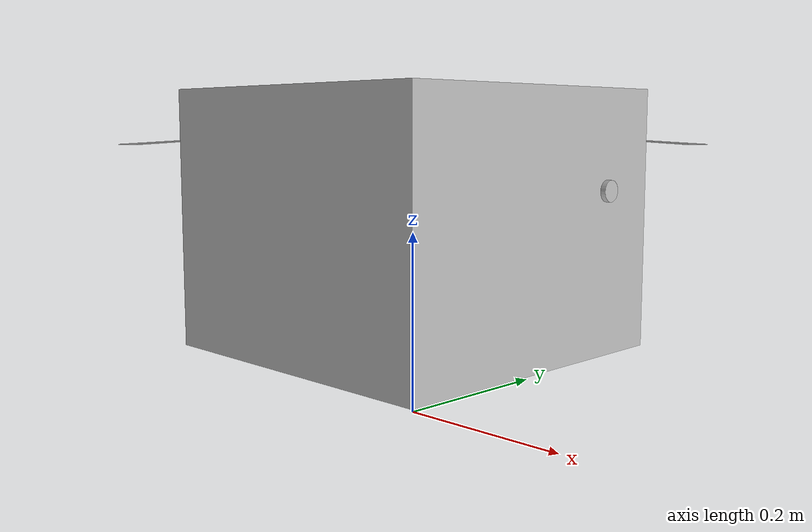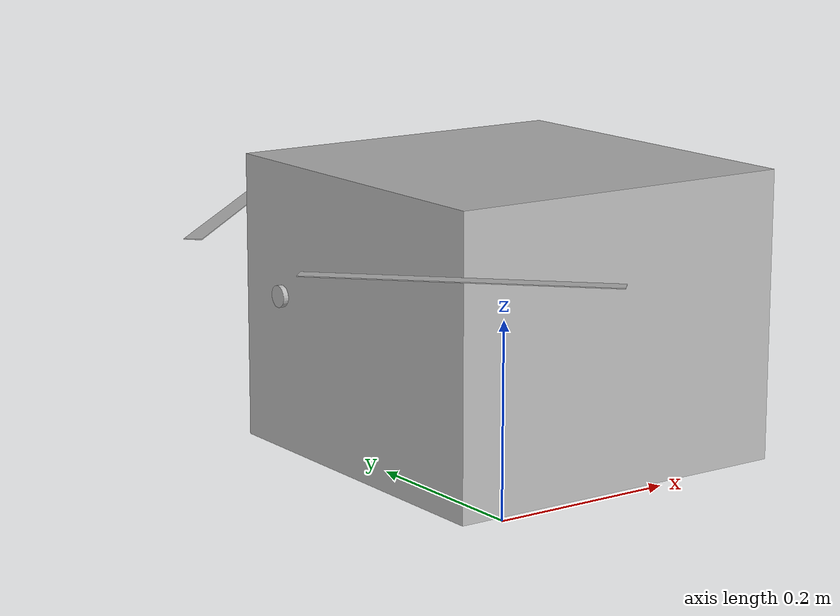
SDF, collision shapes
<?xml version="1.0" encoding="UTF-8"?>
<sdf version='1.9'>
  <model name='holybro_x500_dual'>
    <pose>0 0 0 0 0 0</pose>
    <self_collide>false</self_collide>
    <static>false</static>
    <link name="base_link">
     <inertial>
        <pose>0 0 0 0 0 0</pose>
        <mass>2.0</mass>
        <inertia>
          <ixx>0.02166666666666667</ixx>
          <ixy>0</ixy>
          <ixz>0</ixz>
          <iyy>0.02166666666666667</iyy>
          <iyz>0</iyz>
          <izz>0.04000000000000001</izz>
        </inertia>
      </inertial>
      <gravity>true</gravity>
      <velocity_decay/>
      <visual name="base_link_visual">
        <pose>0 0 0.25 0 0 0</pose>
        <geometry>
          <mesh>
            <scale>1 1 1</scale>
            <uri>model://holybro_x500_dual/meshes/uav_model_motors.dae</uri>
          </mesh>
        </geometry>
      </visual>
      <!-- Collision definition -->
      <collision name="base_link_collision_0">
        <pose> 0 0 .215 0 0 0</pose>
        <geometry>
          <box>
            <size>0.35355339059327373 0.35355339059327373 0.278 </size>
          </box>
        </geometry>
        <surface>
          <contact>
            <ode>
              <min_depth>0.001</min_depth>
              <max_vel>0</max_vel>
            </ode>
          </contact>
          <friction>
            <ode/>
          </friction>
        </surface>
      </collision>
        <!-- Collision definition -->
      <sensor name="air_pressure_sensor" type="air_pressure">
        <always_on>1</always_on>
        <update_rate>50</update_rate>
        <air_pressure>
          <pressure>
            <noise type="gaussian">
              <mean>0</mean>
              <stddev>0.01</stddev>
            </noise>
          </pressure>
        </air_pressure>
      </sensor>
      <sensor name="imu_sensor" type="imu">
        <always_on>1</always_on>
        <update_rate>250</update_rate>
      </sensor>
    </link>
    <link name="rotor_0">
      <gravity>true</gravity>
      <self_collide>false</self_collide>
      <velocity_decay/>
      <pose>0 0 0.25 0 0 0</pose>
      <inertial>
          <mass>0.016076923076923075</mass>
          <inertia>
            <ixx>3.8464910483993325e-07</ixx>
            <iyy>2.6115851691700804e-05</iyy>
            <izz>2.649858234714004e-05</izz>
          </inertia>
        </inertial>
      <visual name="rotor_0_visual">
        <pose>0 0 0 0 0 0</pose>
        <geometry>
          <mesh>
            <scale>1 1 1</scale>
            <uri>model://holybro_x500_dual/meshes/holybro_propeller_ccw.dae</uri>
          </mesh>
        </geometry>
      </visual>
      <collision name="rotor_0_collision">
        <pose>0 0 0.041 0 0 0.785398 </pose>
        <geometry>
          <box>
            <size>0.2792307692307692 0.016923076923076923 0.0008461538461538462</size>
          </box>
        </geometry>
        <surface>
          <contact>
            <ode>
              <min_depth>0.001</min_depth>
              <max_vel>0</max_vel>
            </ode>
          </contact>
          <friction>
            <ode/>
          </friction>
        </surface>
      </collision>
    </link>
    <joint name="rotor_0_joint" type="revolute">
      <parent>base_link</parent>
      <child>rotor_0</child>
      <axis>
        <xyz>0 0 1</xyz>
        <limit>
          <lower>-1e+16</lower>
          <upper>1e+16</upper>
        </limit>
        <dynamics>
          <spring_reference>0</spring_reference>
          <spring_stiffness>0</spring_stiffness>
        </dynamics>
      </axis>
    </joint>
    <link name="rotor_1">
      <gravity>true</gravity>
      <self_collide>false</self_collide>
      <velocity_decay/>
      <pose>-0.188 0.188 0.257 0 0 0</pose>
      <inertial>
          <mass>0.016076923076923075</mass>
          <inertia>
            <ixx>3.8464910483993325e-07</ixx>
            <iyy>2.6115851691700804e-05</iyy>
            <izz>2.649858234714004e-05</izz>
          </inertia>
        </inertial>
      <visual name="rotor_1_visual">
        <pose>0 0 0.031 0 0 0</pose>
        <geometry>
          <mesh>
            <scale>1 1 1</scale>
            <uri>model://holybro_x500_dual/meshes/holybro_propeller_ccw.dae</uri>
          </mesh>
        </geometry>
      </visual>
      <collision name="rotor_1_collision">
        <pose>0 0 0.041 0 0 0.785398</pose>
        <geometry>
          <box>
            <size>0.2792307692307692 0.016923076923076923 0.0008461538461538462</size>
          </box>
        </geometry>
        <surface>
          <contact>
            <ode>
              <min_depth>0.001</min_depth>
              <max_vel>0</max_vel>
            </ode>
          </contact>
          <friction>
            <ode/>
          </friction>
        </surface>
      </collision>
    </link>
    <joint name="rotor_1_joint" type="revolute">
      <parent>base_link</parent>
      <child>rotor_1</child>
      <axis>
        <xyz>0 0 1</xyz>
        <limit>
          <lower>-1e+16</lower>
          <upper>1e+16</upper>
        </limit>
        <dynamics>
          <spring_reference>0</spring_reference>
          <spring_stiffness>0</spring_stiffness>
        </dynamics>
      </axis>
    </joint>
    <link name="rotor_2">
      <gravity>true</gravity>
      <self_collide>false</self_collide>
      <velocity_decay/>
      <pose>0.188 0.188 0.257 0 0 0</pose>
      <inertial>
          <mass>0.016076923076923075</mass>
          <inertia>
            <ixx>3.8464910483993325e-07</ixx>
            <iyy>2.6115851691700804e-05</iyy>
            <izz>2.649858234714004e-05</izz>
          </inertia>
        </inertial>
      <visual name="rotor_2_visual">
        <pose>0 0 0.031 0 0 0</pose>
        <geometry>
          <mesh>
            <scale>1 1 1</scale>
            <uri>model://holybro_x500_dual/meshes/holybro_propeller_cw.dae</uri>
          </mesh>
        </geometry>
      </visual>
      <collision name="rotor_2_collision">
        <pose>0 0 0.041 0 0 -0.785398</pose>
        <geometry>
          <box>
            <size>0.2792307692307692 0.016923076923076923 0.0008461538461538462</size>
          </box>
        </geometry>
        <surface>
          <contact>
            <ode>
              <min_depth>0.001</min_depth>
              <max_vel>0</max_vel>
            </ode>
          </contact>
          <friction>
            <ode/>
          </friction>
        </surface>
      </collision>
    </link>
    <joint name="rotor_2_joint" type="revolute">
      <parent>base_link</parent>
      <child>rotor_2</child>
      <axis>
        <xyz>0 0 1</xyz>
        <limit>
          <lower>-1e+16</lower>
          <upper>1e+16</upper>
        </limit>
        <dynamics>
          <spring_reference>0</spring_reference>
          <spring_stiffness>0</spring_stiffness>
        </dynamics>
      </axis>
    </joint>
    <link name="rotor_3">
      <gravity>true</gravity>
      <self_collide>false</self_collide>
      <velocity_decay/>
      <pose>-0.188 -0.188 0.257 0 0 0</pose>
      <inertial>
          <mass>0.016076923076923075</mass>
          <inertia>
            <ixx>3.8464910483993325e-07</ixx>
            <iyy>2.6115851691700804e-05</iyy>
            <izz>2.649858234714004e-05</izz>
          </inertia>
        </inertial>
      <visual name="rotor_3_visual">
        <pose>0 0 0.031 0 0 0</pose>
        <geometry>
          <mesh>
            <scale>1 1 1</scale>
            <uri>model://holybro_x500_dual/meshes/holybro_propeller_cw.dae</uri>
          </mesh>
        </geometry>
      </visual>
      <collision name="rotor_3_collision">
        <pose>0 0 0.041 0 0 -0.785398</pose>
        <geometry>
          <box>
            <size>0.2792307692307692 0.016923076923076923 0.0008461538461538462</size>
          </box>
        </geometry>
        <surface>
          <contact>
            <ode>
              <min_depth>0.001</min_depth>
              <max_vel>0</max_vel>
            </ode>
          </contact>
          <friction>
            <ode/>
          </friction>
        </surface>
      </collision>
    </link>
    <joint name="rotor_3_joint" type="revolute">
      <parent>base_link</parent>
      <child>rotor_3</child>
      <axis>
        <xyz>0 0 1</xyz>
        <limit>
          <lower>-1e+16</lower>
          <upper>1e+16</upper>
        </limit>
        <dynamics>
          <spring_reference>0</spring_reference>
          <spring_stiffness>0</spring_stiffness>
        </dynamics>
      </axis>
    </joint>
<!-- Additional Rotors 4,5-->
<link name='rotor_4'>
      <pose>-0.25 0.00 0.257  1.57 0 1.57</pose>
      <inertial>
        <pose>0 0 0 0 0 0</pose>
        <mass>0.005</mass>
        <inertia>
          <ixx>9.75e-07</ixx>
          <ixy>0</ixy>
          <ixz>0</ixz>
          <iyy>0.000273104</iyy>
          <iyz>0</iyz>
          <izz>0.000274004</izz>
        </inertia>
      </inertial>
      <collision name='rotor_4_collision'>
        <pose>0 0 0 0 0 0</pose>
        <geometry>
          <cylinder>
            <length>0.005</length>
            <radius>0.01</radius>
          </cylinder>
        </geometry>
        <surface>
          <contact>
            <ode/>
          </contact>
          <friction>
            <ode/>
          </friction>
        </surface>
      </collision>
      <visual name='rotor_4_visual'>
        <pose>0 0 0 0 0 0</pose>
        <geometry>
          <mesh>
            <scale>0.5 0.5 0.5</scale>
            <uri>model://holybro_x500_dual/meshes/holybro_propeller_cw.dae</uri>
          </mesh>
        </geometry>
      </visual>
    </link>
<joint name='rotor_4_joint' type='revolute'>
      <child>rotor_4</child>
      <parent>base_link</parent>
      <axis>
        <xyz>0 0 1</xyz>
        <limit>
          <lower>-1e+16</lower>
          <upper>1e+16</upper>
        </limit>
        <dynamics>
          <spring_reference>0</spring_reference>
          <spring_stiffness>0</spring_stiffness>
        </dynamics>
        <use_parent_model_frame>1</use_parent_model_frame>
      </axis>
    </joint>
    <link name='rotor_5'>
      <pose>0.25 0.00 0.257  -1.57 0 1.57</pose>
      <inertial>
        <pose>0 0 0 0 0 0</pose>
        <mass>0.005</mass>
        <inertia>
          <ixx>9.75e-07</ixx>
          <ixy>0</ixy>
          <ixz>0</ixz>
          <iyy>0.000273104</iyy>
          <iyz>0</iyz>
          <izz>0.000274004</izz>
        </inertia>
      </inertial>
      <collision name='rotor_5_collision'>
        <pose>0 0 0 0 0 0</pose>
        <geometry>
          <cylinder>
            <length>0.005</length>
            <radius>0.01</radius>
          </cylinder>
        </geometry>
        <surface>
          <contact>
            <ode/>
          </contact>
          <friction>
            <ode/>
          </friction>
        </surface>
      </collision>
      <visual name='rotor_5_visual'>
        <pose>0 0 0 0 0 0</pose>
        <geometry>
          <mesh>
            <scale>0.5 0.5 0.5</scale>
            <uri>model://holybro_x500_dual/meshes/holybro_propeller_cw.dae</uri>
          </mesh>
        </geometry>
      </visual>
    </link>

    <joint name='rotor_5_joint' type='revolute'>
      <child>rotor_5</child>
      <parent>base_link</parent>
      <axis>
        <xyz>0 0 1</xyz>
        <limit>
          <lower>-1e+16</lower>
          <upper>1e+16</upper>
        </limit>
        <dynamics>
          <spring_reference>0</spring_reference>
          <spring_stiffness>0</spring_stiffness>
        </dynamics>
        <use_parent_model_frame>1</use_parent_model_frame>
      </axis>
    </joint>

<!-- Additional Rotors 4,5END -->

   <plugin filename="gz-sim-multicopter-motor-model-system" name="gz::sim::systems::MulticopterMotorModel">
      <jointName>rotor_0_joint</jointName>
      <linkName>rotor_0</linkName>
      <turningDirection>ccw</turningDirection>
      <timeConstantUp>0.0125</timeConstantUp>
      <timeConstantDown>0.025</timeConstantDown>
      <maxRotVelocity>1000.0</maxRotVelocity>
      <motorConstant>8.54858e-06</motorConstant>
      <momentConstant>0.016</momentConstant>
      <commandSubTopic>command/motor_speed</commandSubTopic>
      <motorNumber>0</motorNumber>
      <rotorDragCoefficient>8.06428e-05</rotorDragCoefficient>
      <rollingMomentCoefficient>1e-06</rollingMomentCoefficient>
      <rotorVelocitySlowdownSim>10</rotorVelocitySlowdownSim>
      <motorType>velocity</motorType>
    </plugin>
    <plugin filename="gz-sim-multicopter-motor-model-system" name="gz::sim::systems::MulticopterMotorModel">
      <jointName>rotor_1_joint</jointName>
      <linkName>rotor_1</linkName>
      <turningDirection>ccw</turningDirection>
      <timeConstantUp>0.0125</timeConstantUp>
      <timeConstantDown>0.025</timeConstantDown>
      <maxRotVelocity>1000.0</maxRotVelocity>
      <motorConstant>8.54858e-06</motorConstant>
      <momentConstant>0.016</momentConstant>
      <commandSubTopic>command/motor_speed</commandSubTopic>
      <motorNumber>1</motorNumber>
      <rotorDragCoefficient>8.06428e-05</rotorDragCoefficient>
      <rollingMomentCoefficient>1e-06</rollingMomentCoefficient>
      <rotorVelocitySlowdownSim>10</rotorVelocitySlowdownSim>
      <motorType>velocity</motorType>
    </plugin>
    <plugin filename="gz-sim-multicopter-motor-model-system" name="gz::sim::systems::MulticopterMotorModel">
      <jointName>rotor_2_joint</jointName>
      <linkName>rotor_2</linkName>
      <turningDirection>cw</turningDirection>
      <timeConstantUp>0.0125</timeConstantUp>
      <timeConstantDown>0.025</timeConstantDown>
      <maxRotVelocity>1000.0</maxRotVelocity>
      <motorConstant>8.54858e-06</motorConstant>
      <momentConstant>0.016</momentConstant>
      <commandSubTopic>command/motor_speed</commandSubTopic>
      <motorNumber>2</motorNumber>
      <rotorDragCoefficient>8.06428e-05</rotorDragCoefficient>
      <rollingMomentCoefficient>1e-06</rollingMomentCoefficient>
      <rotorVelocitySlowdownSim>10</rotorVelocitySlowdownSim>
      <motorType>velocity</motorType>
    </plugin>
    <plugin filename="gz-sim-multicopter-motor-model-system" name="gz::sim::systems::MulticopterMotorModel">
      <jointName>rotor_3_joint</jointName>
      <linkName>rotor_3</linkName>
      <turningDirection>cw</turningDirection>
      <timeConstantUp>0.0125</timeConstantUp>
      <timeConstantDown>0.025</timeConstantDown>
      <maxRotVelocity>1000.0</maxRotVelocity>
      <motorConstant>8.54858e-06</motorConstant>
      <momentConstant>0.016</momentConstant>
      <commandSubTopic>command/motor_speed</commandSubTopic>
      <motorNumber>3</motorNumber>
      <rotorDragCoefficient>8.06428e-05</rotorDragCoefficient>
      <rollingMomentCoefficient>1e-06</rollingMomentCoefficient>
      <rotorVelocitySlowdownSim>10</rotorVelocitySlowdownSim>
      <motorType>velocity</motorType>
    </plugin>

    <!-- Horizontal thrusters -->
    <plugin filename="gz-sim-multicopter-motor-model-system" name="gz::sim::systems::MulticopterMotorModel">
      <jointName>rotor_4_joint</jointName>
      <linkName>rotor_4</linkName>
      <turningDirection>cw</turningDirection>
      <timeConstantUp>0.0125</timeConstantUp>
      <timeConstantDown>0.025</timeConstantDown>
      <maxRotVelocity>1000.0</maxRotVelocity>
      <motorConstant>8.54858e-06</motorConstant>
      <momentConstant>0.016</momentConstant>
      <commandSubTopic>command/motor_speed</commandSubTopic>
      <motorNumber>4</motorNumber>
      <rotorDragCoefficient>8.06428e-05</rotorDragCoefficient>
      <rollingMomentCoefficient>1e-06</rollingMomentCoefficient>
      <rotorVelocitySlowdownSim>10</rotorVelocitySlowdownSim>
      <motorType>velocity</motorType>
    </plugin>

    <plugin filename="gz-sim-multicopter-motor-model-system" name="gz::sim::systems::MulticopterMotorModel">
      <jointName>rotor_5_joint</jointName>
      <linkName>rotor_5</linkName>
      <turningDirection>cw</turningDirection>
      <timeConstantUp>0.0125</timeConstantUp>
      <timeConstantDown>0.025</timeConstantDown>
      <maxRotVelocity>1000.0</maxRotVelocity>
      <motorConstant>8.54858e-06</motorConstant>
      <momentConstant>0.016</momentConstant>
      <commandSubTopic>command/motor_speed</commandSubTopic>
      <motorNumber>5</motorNumber>
      <rotorDragCoefficient>8.06428e-05</rotorDragCoefficient>
      <rollingMomentCoefficient>1e-06</rollingMomentCoefficient>
      <rotorVelocitySlowdownSim>10</rotorVelocitySlowdownSim>
      <motorType>velocity</motorType>
    </plugin>
<!-- Horizontal thrusters END-->

  </model>
</sdf>
